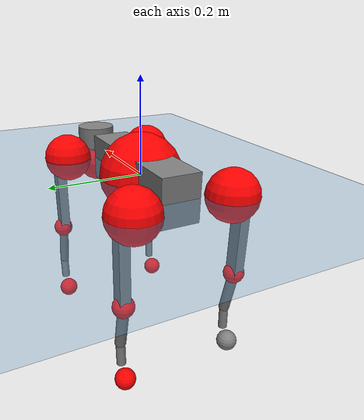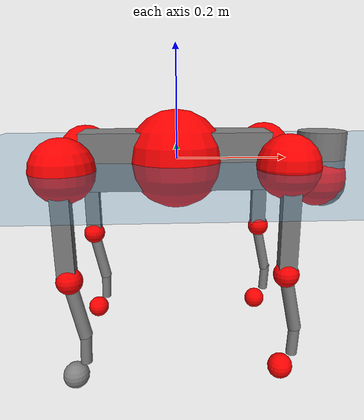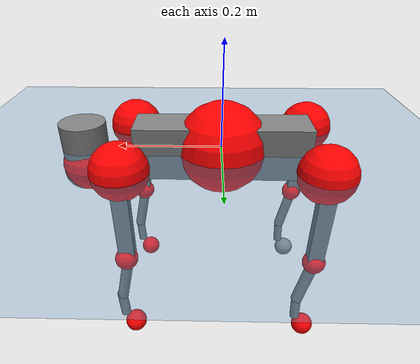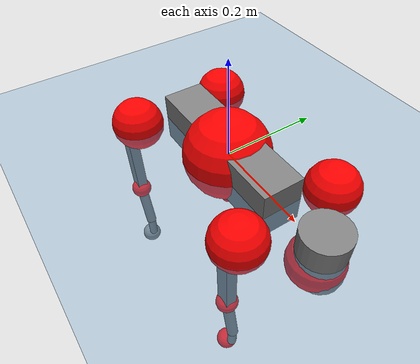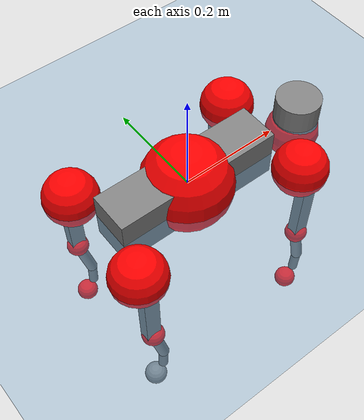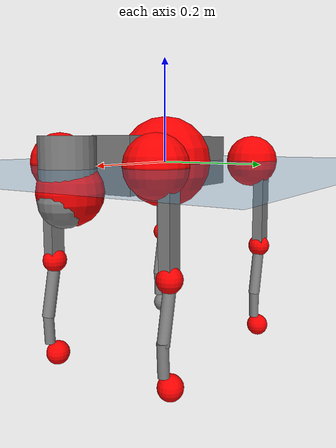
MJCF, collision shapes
<mujoco model="go2">
  <compiler angle="radian" assetdir="assets" balanceinertia="true" inertiafromgeom="false"/>

  <option timestep="0.005" density="1.2" viscosity="2e-05"/>

  <size nkey="1"/>

  <visual>
    <quality shadowsize="8192"/>
    <map shadowclip="0.5"/>
  </visual>

  <default>
    <default class="/">
      <geom contype="0" conaffinity="0" group="1" solref="-1000 -80"/>
      <site size="0.01 0.005 0.005" group="5"/>
      <general forcelimited="true" biastype="affine" gainprm="20" biasprm="0 -20 -0.5"/>
      <default class="go2">
        <joint armature="0.01" damping="0.01" frictionloss="0.2"/>
        <geom condim="1" margin="0.001"/>
        <default class="visual">
          <geom type="mesh" group="2"/>
        </default>
        <default class="collision">
          <geom group="3"/>
          <default class="foot">
            <geom size="0.022 0 0" condim="6" priority="1" friction="0.8 0.02 0.01" solimp="0.015 1 0.022"/>
          </default>
        </default>
        <default class="reward_collision_sphere">
          <geom group="5" rgba="1 0 0 1"/>
        </default>
      </default>
    </default>
  </default>

  <asset>
    <texture type="skybox" colorspace="auto" name="//unnamed_texture_0" builtin="gradient" rgb1="0.95 0.95 0.95" rgb2="0.95 0.95 0.95" width="100" height="600"/>
    <texture type="2d" colorspace="auto" name="texplane" builtin="checker" rgb1="0.345 0.575 0.748" rgb2="0.345 0.575 0.748" markrgb="1 1 1" width="512" height="512"/>
    <material name="MatPlane" class="/" texture="texplane" texuniform="true" texrepeat="2 2" specular="0.9"/>
    <material name="metal" class="/" rgba="0.9 0.95 0.95 1"/>
    <material name="black" class="/" rgba="0 0 0 1"/>
    <material name="white" class="/"/>
    <material name="gray" class="/" rgba="0.671705 0.692426 0.77427 1"/>
    <mesh name="base_0" class="/" file="base_0.obj"/>
    <mesh name="base_1" class="/" file="base_1.obj"/>
    <mesh name="base_2" class="/" file="base_2.obj"/>
    <mesh name="base_3" class="/" file="base_3.obj"/>
    <mesh name="base_4" class="/" file="base_4.obj"/>
    <mesh name="hip_0" class="/" file="hip_0.obj"/>
    <mesh name="hip_1" class="/" file="hip_1.obj"/>
    <mesh name="thigh_0" class="/" file="thigh_0.obj"/>
    <mesh name="thigh_1" class="/" file="thigh_1.obj"/>
    <mesh name="thigh_mirror_0" class="/" file="thigh_mirror_0.obj"/>
    <mesh name="thigh_mirror_1" class="/" file="thigh_mirror_1.obj"/>
    <mesh name="calf_0" class="/" file="calf_0.obj"/>
    <mesh name="calf_1" class="/" file="calf_1.obj"/>
    <mesh name="calf_mirror_0" class="/" file="calf_mirror_0.obj"/>
    <mesh name="calf_mirror_1" class="/" file="calf_mirror_1.obj"/>
    <mesh name="foot" class="/" file="foot.obj"/>
  </asset>

  <worldbody>
    <geom name="floor" class="/" size="100 100 0.125" type="plane" group="0" material="MatPlane"/>
    <light name="toplight_shadow" class="/" pos="0 0 5" dir="0.0990148 0.0990148 -0.990148" type="directional" ambient="0.04 0.04 0.04" diffuse="0.55 0.55 0.55" specular="0.12 0.12 0.12"/>
    <light name="toplight_fill" class="/" pos="0 0 5" dir="0.0990148 0.0990148 -0.990148" type="directional" castshadow="false" ambient="0.04 0.04 0.04" diffuse="0.3 0.3 0.3" specular="0.08 0.08 0.08"/>
    <body name="trunk" childclass="go2" pos="-0.00153118 -0.000354061 -0.000120461" quat="1 0.000212731 -0.000350236 -0.000296486">
      <inertial pos="0.0194822 0.000161301 -0.00412028" quat="-0.00198983 0.720646 -0.00235777 0.693296" mass="4.81092" diaginertia="0.0797485 0.0531338 0.0107026"/>
      <joint name="//unnamed_joint_0" type="free" armature="0" damping="0" frictionloss="0"/>
      <geom name="//unnamed_geom_1" class="visual" material="black" mesh="base_0"/>
      <geom name="//unnamed_geom_2" class="visual" material="black" mesh="base_1"/>
      <geom name="//unnamed_geom_3" class="visual" material="black" mesh="base_2"/>
      <geom name="//unnamed_geom_4" class="visual" material="white" mesh="base_3"/>
      <geom name="//unnamed_geom_5" class="visual" material="gray" mesh="base_4"/>
      <geom name="trunk_1" class="collision" size="0.167294 0.0415789 0.0506951" type="box"/>
      <geom name="trunk_2" class="collision" size="0.0444694 0.0400225" pos="0.267652 0 0.00844441" type="cylinder"/>
      <geom name="trunk_3" class="collision" size="0.0418012" pos="0.275165 0 -0.0506665"/>
      <geom name="//unnamed_geom_9" class="reward_collision_sphere" size="0.0889388"/>
      <geom name="//unnamed_geom_10" class="reward_collision_sphere" size="0.0533633" pos="0.262957 0 -0.0379999"/>
      <site name="imu" pos="-0.0216707 -0.0131293 0.039763" size="0.00889388"/>
      <camera name="track" pos="0 -1.76918 0" quat="0.707107 0.707107 0 0" mode="trackcom"/>
      <camera name="ego_camera" pos="0.293009 0 0.0379999" quat="-0.5 -0.5 0.5 0.5"/>
      <body name="FL_hip" pos="0.180923 0.0422908 0.00111941" quat="0.999999 0.000689578 0.00128767 -3.34716e-05">
        <inertial pos="-0.00519001 0.00232672 0.000930597" quat="0.493933 0.494222 0.509142 0.502542" mass="0.492274" diaginertia="0.000667551 0.000332302 0.000213234"/>
        <joint name="FL_hip_joint" pos="0 0 0" axis="0.999958 -0.00600426 0.00689899" range="-0.99751 1.05307" armature="0.00972638" damping="0.00126638" frictionloss="0.182011"/>
        <geom name="//unnamed_geom_11" class="visual" material="metal" mesh="hip_0"/>
        <geom name="//unnamed_geom_12" class="visual" material="gray" mesh="hip_1"/>
        <geom name="//unnamed_geom_13" class="collision" size="0.0409119 0.0177878" pos="0 0.0707673 0" quat="0.707107 0.707107 0 0" type="cylinder"/>
        <geom name="//unnamed_geom_14" class="reward_collision_sphere" size="0.0533633" pos="0 0.0619214 0"/>
        <body name="FL_thigh" pos="-0.00118727 0.0852261 0.00142231" quat="1 -7.37825e-05 3.33023e-05 4.34187e-05">
          <inertial pos="-0.00376156 -0.0220907 -0.0301766" quat="0.82854 0.0845517 -0.0152174 0.553299" mass="0.823097" diaginertia="0.00434104 0.00316966 0.000376115"/>
          <joint name="FL_thigh_joint" pos="0 0 0" axis="-0.00102177 0.999999 0.000453981" stiffness="0.000738598" range="-1.56741 3.54293" armature="0.00881565" damping="0" frictionloss="0.17855"/>
          <geom name="//unnamed_geom_15" class="visual" material="metal" mesh="thigh_0"/>
          <geom name="//unnamed_geom_16" class="visual" material="gray" mesh="thigh_1"/>
          <geom name="//unnamed_geom_17" class="collision" size="0.0947198 0.010895 0.0151196" pos="0 0 -0.089933" quat="0.707107 0 0.707107 0" type="box"/>
          <body name="FL_calf" pos="0.00235094 0.00239401 -0.178562" quat="1 0.000131995 9.69848e-05 -2.48921e-05">
            <inertial pos="0.00706185 -0.000675471 -0.117705" quat="0.711143 0.00152069 -0.00458153 0.70303" mass="0.175393" diaginertia="0.00110865 0.000803573 2.28939e-05"/>
            <joint name="FL_calf_joint" pos="0 0 0" axis="0.00139175 0.999992 -0.003686" range="-2.70127 -0.883908" armature="0.00876747" damping="0" frictionloss="0.178983"/>
            <geom name="//unnamed_geom_18" class="visual" material="gray" mesh="calf_0"/>
            <geom name="//unnamed_geom_19" class="visual" material="black" mesh="calf_1"/>
            <geom name="FL_calf0" class="collision" size="0.0106727 0.0533633" pos="0.00751305 0 -0.0506665" quat="0.994493 0 -0.104807 0" type="cylinder"/>
            <geom name="//unnamed_geom_21" class="collision" size="0.00978327 0.0289051" pos="0.0187826 0 -0.124977" quat="0.999688 0 0.0249974 0" type="cylinder"/>
            <geom name="//unnamed_geom_22" class="visual" pos="0 0 -0.179866" quat="1 0 0 0" material="black" mesh="foot"/>
            <geom name="FL_foot" class="foot" size="0.0168952" pos="-0.00187826 0 -0.179866"/>
            <geom name="//unnamed_geom_24" class="reward_collision_sphere" size="0.0222347"/>
            <geom name="//unnamed_geom_25" class="reward_collision_sphere" size="0.0222347" pos="-0.00187826 0 -0.179866"/>
            <site name="FL_foot" class="foot" pos="-0.00187826 0 -0.179866" size="0.00889388"/>
          </body>
        </body>
      </body>
      <body name="FR_hip" pos="0.182585 -0.0401981 0.00290898" quat="1 -0.000202945 -0.00018414 -0.000124577">
        <inertial pos="-0.00381293 -0.00289124 0.000280416" quat="0.498154 0.495197 0.502847 0.503753" mass="0.492359" diaginertia="0.000664871 0.000331274 0.000210826"/>
        <joint name="FR_hip_joint" pos="0 0 0" axis="0.999994 -0.00124867 0.00323027" range="-1.01451 1.05906" armature="0.00895503" damping="0.0127464" frictionloss="0.169874"/>
        <geom name="//unnamed_geom_26" class="visual" pos="0 3.49773e-10 1.50025e-08" quat="4.63268e-05 1 0 0" material="metal" mesh="hip_0"/>
        <geom name="//unnamed_geom_27" class="visual" pos="0 5.67025e-10 -3.71069e-08" quat="4.63268e-05 1 0 0" material="gray" mesh="hip_1"/>
        <geom name="//unnamed_geom_28" class="collision" size="0.0409119 0.0177878" pos="0 -0.0707673 0" quat="0.707107 0.707107 0 0" type="cylinder"/>
        <geom name="//unnamed_geom_29" class="reward_collision_sphere" size="0.0533633" pos="0 -0.0619214 0"/>
        <body name="FR_thigh" pos="0.000614495 -0.0842899 -0.00128191" quat="1 0.000421669 -0.00010959 0.000287261">
          <inertial pos="-0.00317892 0.0197344 -0.0301469" quat="0.550543 -0.00861521 0.0908838 0.8298" mass="0.8263" diaginertia="0.0044728 0.00326684 0.000389749"/>
          <joint name="FR_thigh_joint" pos="0 0 0" axis="0.00122014 -0.999993 0.00363409" stiffness="0.00126373" range="-3.54271 1.60936" armature="0.00806136" damping="0.0129895" frictionloss="0.169125"/>
          <geom name="//unnamed_geom_30" class="visual" material="metal" mesh="thigh_mirror_0"/>
          <geom name="//unnamed_geom_31" class="visual" material="gray" mesh="thigh_mirror_1"/>
          <geom name="//unnamed_geom_32" class="collision" size="0.0947198 0.010895 0.0151196" pos="0 0 -0.089933" quat="0.707107 0 0.707107 0" type="box"/>
          <body name="FR_calf" pos="-0.000468665 0.000322239 -0.179804" quat="1 2.08804e-05 0.000109283 2.4927e-05">
            <inertial pos="0.00500674 0.000701164 -0.116982" quat="0.704546 -0.00367839 0.00239093 0.709645" mass="0.160392" diaginertia="0.00104643 0.000792242 2.13858e-05"/>
            <joint name="FR_calf_joint" pos="0 0 0" axis="-0.00227078 -0.999981 0.00565032" stiffness="0.00259653" range="0.836083 2.71916" armature="0.00967233" damping="0.013772" frictionloss="0.17781"/>
            <geom name="//unnamed_geom_33" class="visual" material="gray" mesh="calf_mirror_0"/>
            <geom name="//unnamed_geom_34" class="visual" material="black" mesh="calf_mirror_1"/>
            <geom name="FR_calf0" class="collision" size="0.011562 0.0533633" pos="0.00939131 0 -0.0506665" quat="0.995004 0 -0.0998334 0" type="cylinder"/>
            <geom name="//unnamed_geom_36" class="collision" size="0.00978327 0.0289051" pos="0.0187826 0 -0.124977" quat="0.999688 0 0.0249974 0" type="cylinder"/>
            <geom name="//unnamed_geom_37" class="visual" pos="0 0 -0.179866" quat="1 0 0 0" material="black" mesh="foot"/>
            <geom name="FR_foot" class="foot" size="0.0214818" pos="-0.00187826 0 -0.179866"/>
            <geom name="//unnamed_geom_39" class="reward_collision_sphere" size="0.0222347"/>
            <geom name="//unnamed_geom_40" class="reward_collision_sphere" size="0.0222347" pos="-0.00187826 0 -0.179866"/>
            <site name="FR_foot" class="foot" pos="-0.00187826 0 -0.179866" size="0.00889388"/>
          </body>
        </body>
      </body>
      <body name="RL_hip" pos="-0.180551 0.0408211 -0.00182495" quat="1 -1.87103e-05 -0.000206638 0.000166637">
        <inertial pos="0.00482737 0.00210754 -0.00230082" quat="0.50471 0.498479 0.497857 0.498924" mass="0.492517" diaginertia="0.000665388 0.000318072 0.000207353"/>
        <joint name="RL_hip_joint" pos="0 0 0" axis="-0.99976 0.0212384 0.00536658" range="-0.994614 1.09596" armature="0.00894808" damping="0" frictionloss="0.200005"/>
        <geom name="//unnamed_geom_41" class="visual" pos="-8.24897e-10 0 -1.61699e-07" quat="4.63268e-05 0 1 0" material="metal" mesh="hip_0"/>
        <geom name="//unnamed_geom_42" class="visual" pos="-1.33726e-09 0 -1.43404e-07" quat="4.63268e-05 0 1 0" material="gray" mesh="hip_1"/>
        <geom name="//unnamed_geom_43" class="collision" size="0.0409119 0.0177878" pos="0 0.0707673 0" quat="0.707107 0.707107 0 0" type="cylinder"/>
        <geom name="//unnamed_geom_44" class="reward_collision_sphere" size="0.0533633" pos="0 0.0619214 0"/>
        <body name="RL_thigh" pos="0.000690339 0.0851242 -0.000890383" quat="1 1.00154e-05 -6.45645e-06 -4.93167e-07">
          <inertial pos="-0.00587998 -0.0195441 -0.0303157" quat="0.83631 0.0840236 -0.0186363 0.54146" mass="0.81291" diaginertia="0.00417946 0.00315871 0.000363196"/>
          <joint name="RL_thigh_joint" pos="0 0 0" axis="0.0118388 0.99989 0.0088946" stiffness="0.00394111" range="-0.572546 4.55864" armature="0.0085814" damping="0.00379019" frictionloss="0.178781"/>
          <geom name="//unnamed_geom_45" class="visual" material="metal" mesh="thigh_0"/>
          <geom name="//unnamed_geom_46" class="visual" material="gray" mesh="thigh_1"/>
          <geom name="//unnamed_geom_47" class="collision" size="0.0947198 0.010895 0.0151196" pos="0 0 -0.089933" quat="0.707107 0 0.707107 0" type="box"/>
          <body name="RL_calf" pos="-0.000597744 -0.00160312 -0.182098" quat="1 -3.82818e-05 7.62039e-05 7.48294e-05">
            <inertial pos="0.0063303 -0.00126198 -0.118203" quat="0.714742 0.00534681 0.00298986 0.699361" mass="0.165577" diaginertia="0.00108473 0.000784385 2.29923e-05"/>
            <joint name="RL_calf_joint" pos="0 0 0" axis="0.00949837 0.999954 -0.000993345" range="-2.74265 -0.835811" armature="0.00893985" damping="0.000400401" frictionloss="0.18405"/>
            <geom name="//unnamed_geom_48" class="visual" material="gray" mesh="calf_0"/>
            <geom name="//unnamed_geom_49" class="visual" material="black" mesh="calf_1"/>
            <geom name="RL_calf0" class="collision" size="0.011562 0.0533633" pos="0.00939131 0 -0.0506665" quat="0.995004 0 -0.0998334 0" type="cylinder"/>
            <geom name="//unnamed_geom_51" class="collision" size="0.00978327 0.0289051" pos="0.0187826 0 -0.124977" quat="0.999688 0 0.0249974 0" type="cylinder"/>
            <geom name="//unnamed_geom_52" class="visual" pos="0 0 -0.179866" quat="1 0 0 0" material="black" mesh="foot"/>
            <geom name="RL_foot" class="foot" size="0.017953" pos="-0.00187826 0 -0.179866"/>
            <geom name="//unnamed_geom_54" class="reward_collision_sphere" size="0.0222347"/>
            <geom name="//unnamed_geom_55" class="reward_collision_sphere" size="0.0222347" pos="-0.00187826 0 -0.179866"/>
            <site name="RL_foot" class="foot" pos="-0.00187826 0 -0.179866" size="0.00889388"/>
          </body>
        </body>
      </body>
      <body name="RR_hip" pos="-0.181588 -0.0414349 -0.000305768" quat="1 0.000111454 6.14668e-06 -0.000106837">
        <inertial pos="0.00523458 0.000789872 -0.00172962" quat="0.499282 0.496992 0.498231 0.505453" mass="0.459232" diaginertia="0.000629391 0.000315351 0.000199047"/>
        <joint name="RR_hip_joint" pos="0 0 0" axis="-1 -0.000807423 6.32875e-05" range="-1.05843 1.00621" armature="0.00873154" damping="0" frictionloss="0.170519"/>
        <geom name="//unnamed_geom_56" class="visual" pos="8.23009e-10 3.49773e-10 -1.76701e-07" quat="2.14617e-09 4.63268e-05 4.63268e-05 -1" material="metal" mesh="hip_0"/>
        <geom name="//unnamed_geom_57" class="visual" pos="1.34193e-09 5.67025e-10 -1.06297e-07" quat="2.14617e-09 4.63268e-05 4.63268e-05 -1" material="gray" mesh="hip_1"/>
        <geom name="//unnamed_geom_58" class="collision" size="0.0409119 0.0177878" pos="0 -0.0707673 0" quat="0.707107 0.707107 0 0" type="cylinder"/>
        <geom name="//unnamed_geom_59" class="reward_collision_sphere" size="0.0533633" pos="0 -0.0619214 0"/>
        <body name="RR_thigh" pos="-0.000870252 -0.0856932 0.00169937" quat="1 -0.000203888 -0.000401318 -0.000103864">
          <inertial pos="-0.00428517 0.0214864 -0.0276538" quat="0.551493 -0.0193452 0.0855308 0.829558" mass="0.767765" diaginertia="0.00421776 0.00307073 0.000376779"/>
          <joint name="RR_thigh_joint" pos="0 0 0" axis="0.00719657 -0.999973 -0.001309" stiffness="0.00536027" range="-4.58925 0.573414" armature="0.0091311" damping="0.0114249" frictionloss="0.158452"/>
          <geom name="//unnamed_geom_60" class="visual" material="metal" mesh="thigh_mirror_0"/>
          <geom name="//unnamed_geom_61" class="visual" material="gray" mesh="thigh_mirror_1"/>
          <geom name="//unnamed_geom_62" class="collision" size="0.0947198 0.010895 0.0151196" pos="0 0 -0.089933" quat="0.707107 0 0.707107 0" type="box"/>
          <body name="RR_calf" pos="0.00315691 -0.00140807 -0.180744" quat="1 0.000289195 0.000142855 0.000189175">
            <inertial pos="0.00483263 0.000599076 -0.119761" quat="0.702874 -0.00609412 0.000124411 0.711288" mass="0.163453" diaginertia="0.00108411 0.00077706 2.26099e-05"/>
            <joint name="RR_calf_joint" pos="0 0 0" axis="0.000281917 -0.999997 -0.00226508" range="0.831045 2.73782" armature="0.00897088" damping="0.00331746" frictionloss="0.177045"/>
            <geom name="//unnamed_geom_63" class="visual" material="gray" mesh="calf_mirror_0"/>
            <geom name="//unnamed_geom_64" class="visual" material="black" mesh="calf_mirror_1"/>
            <geom name="RR_calf0" class="collision" size="0.011562 0.0533633" pos="0.00939131 0 -0.0506665" quat="0.995004 0 -0.0998334 0" type="cylinder"/>
            <geom name="//unnamed_geom_66" class="collision" size="0.00978327 0.0289051" pos="0.0187826 0 -0.124977" quat="0.999688 0 0.0249974 0" type="cylinder"/>
            <geom name="//unnamed_geom_67" class="visual" pos="0 0 -0.179866" quat="1 0 0 0" material="black" mesh="foot"/>
            <geom name="RR_foot" class="foot" size="0.0227023" pos="-0.00187826 0 -0.179866"/>
            <geom name="//unnamed_geom_69" class="reward_collision_sphere" size="0.0222347"/>
            <geom name="//unnamed_geom_70" class="reward_collision_sphere" size="0.0222347" pos="-0.00187826 0 -0.179866"/>
            <site name="RR_foot" class="foot" pos="-0.00187826 0 -0.179866" size="0.00889388"/>
          </body>
        </body>
      </body>
    </body>
  </worldbody>

  <contact>
    <pair class="/" geom1="floor" geom2="FL_foot" name="//unnamed_contact_0"/>
    <pair class="/" geom1="floor" geom2="FR_foot" name="//unnamed_contact_1"/>
    <pair class="/" geom1="floor" geom2="RL_foot" name="//unnamed_contact_2"/>
    <pair class="/" geom1="floor" geom2="RR_foot" name="//unnamed_contact_3"/>
  </contact>

  <actuator>
    <general name="FL_hip" class="/" joint="FL_hip_joint" forcerange="-20.6698 20.6698" gainprm="18.2859" biasprm="0 -18.2859 -0.471491"/>
    <general name="FL_thigh" class="/" joint="FL_thigh_joint" forcerange="-22.9335 22.9335" gainprm="18.2859" biasprm="0 -18.2859 -0.471491"/>
    <general name="FL_calf" class="/" joint="FL_calf_joint" forcerange="-36.5277 36.5277" gainprm="18.2859" biasprm="0 -18.2859 -0.471491"/>
    <general name="FR_hip" class="/" joint="FR_hip_joint" forcerange="-21.2119 21.2119" gainprm="18.2859" biasprm="0 -18.2859 -0.471491"/>
    <general name="FR_thigh" class="/" joint="FR_thigh_joint" forcerange="-21.5882 21.5882" gainprm="18.2859" biasprm="0 -18.2859 -0.471491"/>
    <general name="FR_calf" class="/" joint="FR_calf_joint" forcerange="-43.6947 43.6947" gainprm="18.2859" biasprm="0 -18.2859 -0.471491"/>
    <general name="RL_hip" class="/" joint="RL_hip_joint" forcerange="-23.0438 23.0438" gainprm="18.2859" biasprm="0 -18.2859 -0.471491"/>
    <general name="RL_thigh" class="/" joint="RL_thigh_joint" forcerange="-21.1674 21.1674" gainprm="18.2859" biasprm="0 -18.2859 -0.471491"/>
    <general name="RL_calf" class="/" joint="RL_calf_joint" forcerange="-41.2632 41.2632" gainprm="18.2859" biasprm="0 -18.2859 -0.471491"/>
    <general name="RR_hip" class="/" joint="RR_hip_joint" forcerange="-20.6665 20.6665" gainprm="18.2859" biasprm="0 -18.2859 -0.471491"/>
    <general name="RR_thigh" class="/" joint="RR_thigh_joint" forcerange="-19.0136 19.0136" gainprm="18.2859" biasprm="0 -18.2859 -0.471491"/>
    <general name="RR_calf" class="/" joint="RR_calf_joint" forcerange="-37.3275 37.3275" gainprm="18.2859" biasprm="0 -18.2859 -0.471491"/>
  </actuator>

  <sensor>
    <gyro site="imu" name="imu_angular_velocity"/>
    <velocimeter site="imu" name="imu_linear_velocity"/>
    <framelinvel objtype="site" objname="FL_foot" name="FL_foot_global_linear_velocity"/>
    <framelinvel objtype="site" objname="FR_foot" name="FR_foot_global_linear_velocity"/>
    <framelinvel objtype="site" objname="RL_foot" name="RL_foot_global_linear_velocity"/>
    <framelinvel objtype="site" objname="RR_foot" name="RR_foot_global_linear_velocity"/>
  </sensor>

  <keyframe>
    <key name="home" qpos="0 0 0.325 1 0 0 0 0.1 0.8 -1.5 -0.1 -0.8 1.5 -0.1 0.8 -1.5 0.1 -0.8 1.5"/>
  </keyframe>
</mujoco>
